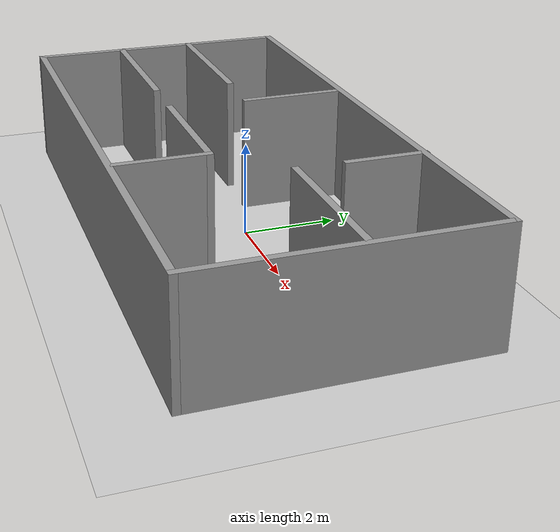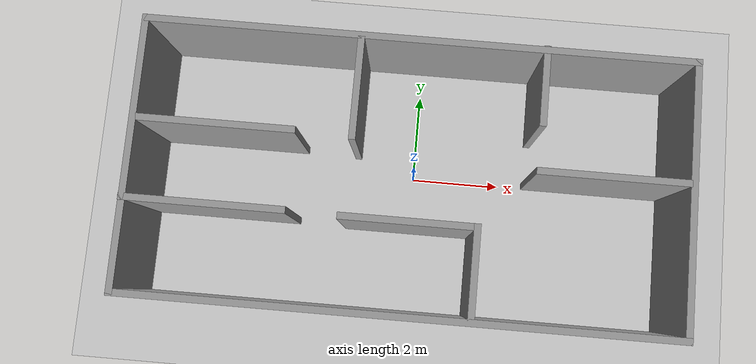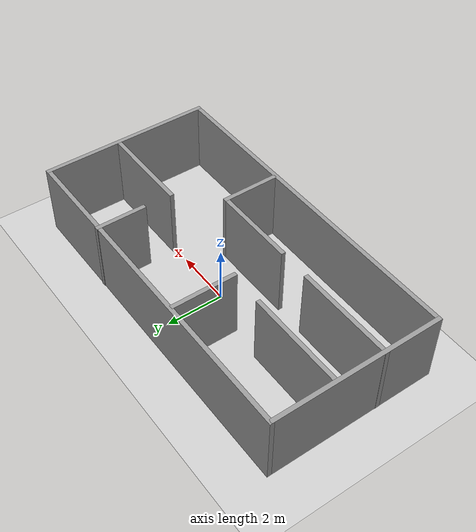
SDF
<sdf version="1.7">
 <world name="default">
  <light name="sun" type="directional">
   <pose>0 0 10 0 -0 0</pose>
   <diffuse>0.8 0.8 0.8 1</diffuse>
   <specular>0.2 0.2 0.2 1</specular>
   <attenuation>
    <range>1000</range>
    <constant>0.9</constant>
    <linear>0.01</linear>
    <quadratic>0.001</quadratic>
   </attenuation>
   <direction>-0.5 0.1 -0.9</direction>
   <spot><inner_angle>0</inner_angle><outer_angle>0</outer_angle><falloff>0</falloff></spot>
  </light>
  <model name="ground_plane">
   <static>1</static>
   <link name="link">
    <collision name="collision">
     <geometry><plane><normal>0 0 1</normal><size>100 100</size></plane></geometry>
     <surface><friction><ode><mu>100</mu><mu2>50</mu2></ode></friction></surface>
    </collision>
    <visual name="visual">
     <cast_shadows>0</cast_shadows>
     <geometry><plane><normal>0 0 1</normal><size>100 100</size></plane></geometry>
     <material>
      <script><uri>file://media/materials/scripts/gazebo.material</uri><name>Gazebo/Grey</name></script>
     </material>
    </visual>
   </link>
  </model>
  <gravity>0 0 -9.8</gravity>
  <magnetic_field>6e-06 2.3e-05 -4.2e-05</magnetic_field>
  <atmosphere type="adiabatic"/>
  <physics type="ode">
   <max_step_size>0.001</max_step_size>
   <real_time_factor>1</real_time_factor>
   <real_time_update_rate>1000</real_time_update_rate>
  </physics>
  <scene><ambient>0.4 0.4 0.4 1</ambient><background>0.7 0.7 0.7 1</background><shadows>1</shadows></scene>
  <audio><device>default</device></audio>
  <spherical_coordinates>
   <surface_model>EARTH_WGS84</surface_model>
   <latitude_deg>0</latitude_deg>
   <longitude_deg>0</longitude_deg>
   <elevation>0</elevation>
   <heading_deg>0</heading_deg>
  </spherical_coordinates>
  <model name="room">
   <pose>-0.071215 0.042074 0 0 -0 0</pose>
   <link name="Wall_0">
    <collision name="Wall_0_Collision">
     <geometry><box><size>6 0.15 2.5</size></box></geometry>
     <pose>0 0 1.25 0 -0 0</pose>
    </collision>
    <visual name="Wall_0_Visual">
     <pose>0 0 1.25 0 -0 0</pose>
     <geometry><box><size>6 0.15 2.5</size></box></geometry>
     <material>
      <script><uri>file://media/materials/scripts/gazebo.material</uri><name>Gazebo/Grey</name></script>
      <ambient>1 1 1 1</ambient>
     </material>
     <meta><layer>0</layer></meta>
    </visual>
    <pose>-5.92057 -0.288752 0 0 -0 -1.5708</pose>
   </link>
   <link name="Wall_11">
    <collision name="Wall_11_Collision">
     <geometry><box><size>2.25 0.15 2.5</size></box></geometry>
     <pose>0 0 1.25 0 -0 0</pose>
    </collision>
    <visual name="Wall_11_Visual">
     <pose>0 0 1.25 0 -0 0</pose>
     <geometry><box><size>2.25 0.15 2.5</size></box></geometry>
     <material>
      <script><uri>file://media/materials/scripts/gazebo.material</uri><name>Gazebo/Grey</name></script>
      <ambient>1 1 1 1</ambient>
     </material>
     <meta><layer>0</layer></meta>
    </visual>
    <pose>-1.27526 1.48542 0 0 -0 1.5708</pose>
   </link>
   <link name="Wall_14">
    <collision name="Wall_14_Collision">
     <geometry><box><size>3.5 0.15 2.5</size></box></geometry>
     <pose>0 0 1.25 0 -0 0</pose>
    </collision>
    <visual name="Wall_14_Visual">
     <pose>0 0 1.25 0 -0 0</pose>
     <geometry><box><size>3.5 0.15 2.5</size></box></geometry>
     <material>
      <script><uri>file://media/materials/scripts/gazebo.material</uri><name>Gazebo/Grey</name></script>
      <ambient>1 1 1 1</ambient>
     </material>
     <meta><layer>0</layer></meta>
    </visual>
    <pose>-4.22401 0.465843 0 0 -0 0</pose>
   </link>
   <link name="Wall_19">
    <collision name="Wall_19_Collision">
     <geometry><box><size>3.5 0.15 2.5</size></box></geometry>
     <pose>0 0 1.25 0 -0 0</pose>
    </collision>
    <visual name="Wall_19_Visual">
     <pose>0 0 1.25 0 -0 0</pose>
     <geometry><box><size>3.5 0.15 2.5</size></box></geometry>
     <material>
      <script><uri>file://media/materials/scripts/gazebo.material</uri><name>Gazebo/Grey</name></script>
      <ambient>1 1 1 1</ambient>
     </material>
     <meta><layer>0</layer></meta>
    </visual>
    <pose>-4.25443 -1.23754 0 0 -0 0</pose>
   </link>
   <link name="Wall_2">
    <collision name="Wall_2_Collision">
     <geometry><box><size>12 0.15 2.5</size></box></geometry>
     <pose>0 0 1.25 0 -0 0</pose>
    </collision>
    <visual name="Wall_2_Visual">
     <pose>0 0 1.25 0 -0 0</pose>
     <geometry><box><size>12 0.15 2.5</size></box></geometry>
     <material>
      <script><uri>file://media/materials/scripts/gazebo.material</uri><name>Gazebo/Grey</name></script>
      <ambient>1 1 1 1</ambient>
     </material>
     <meta><layer>0</layer></meta>
    </visual>
    <pose>0.004431 2.63625 0 0 -0 0</pose>
   </link>
   <link name="Wall_21">
    <collision name="Wall_21_Collision">
     <geometry><box><size>2 0.15 2.5</size></box></geometry>
     <pose>0 0 1.25 0 -0 0</pose>
    </collision>
    <visual name="Wall_21_Visual">
     <pose>0 0 1.25 0 -0 0</pose>
     <geometry><box><size>2 0.15 2.5</size></box></geometry>
     <material>
      <script><uri>file://media/materials/scripts/gazebo.material</uri><name>Gazebo/Grey</name></script>
      <ambient>1 1 1 1</ambient>
     </material>
     <meta><layer>0</layer></meta>
    </visual>
    <pose>1.49244 -2.18321 0 0 -0 1.5708</pose>
   </link>
   <link name="Wall_22">
    <collision name="Wall_22_Collision">
     <geometry><box><size>3 0.15 2.5</size></box></geometry>
     <pose>0 0 1.25 0 -0 0</pose>
    </collision>
    <visual name="Wall_22_Visual">
     <pose>0 0 1.25 0 -0 0</pose>
     <geometry><box><size>3 0.15 2.5</size></box></geometry>
     <material>
      <script><uri>file://media/materials/scripts/gazebo.material</uri><name>Gazebo/Grey</name></script>
      <ambient>1 1 1 1</ambient>
     </material>
     <meta><layer>0</layer></meta>
    </visual>
    <pose>0.067439 -1.25821 0 0 -0 3.14159</pose>
   </link>
   <link name="Wall_27">
    <collision name="Wall_27_Collision">
     <geometry><box><size>3.25 0.15 2.5</size></box></geometry>
     <pose>0 0 1.25 0 -0 0</pose>
    </collision>
    <visual name="Wall_27_Visual">
     <pose>0 0 1.25 0 -0 0</pose>
     <geometry><box><size>3.25 0.15 2.5</size></box></geometry>
     <material>
      <script><uri>file://media/materials/scripts/gazebo.material</uri><name>Gazebo/Grey</name></script>
      <ambient>1 1 1 1</ambient>
     </material>
     <meta><layer>0</layer></meta>
    </visual>
    <pose>4.25914 0.025485 0 0 -0 0</pose>
   </link>
   <link name="Wall_29">
    <collision name="Wall_29_Collision">
     <geometry><box><size>1.75 0.15 2.5</size></box></geometry>
     <pose>0 0 1.25 0 -0 0</pose>
    </collision>
    <visual name="Wall_29_Visual">
     <pose>0 0 1.25 0 -0 0</pose>
     <geometry><box><size>1.75 0.15 2.5</size></box></geometry>
     <material>
      <script><uri>file://media/materials/scripts/gazebo.material</uri><name>Gazebo/Grey</name></script>
      <ambient>1 1 1 1</ambient>
     </material>
     <meta><layer>0</layer></meta>
    </visual>
    <pose>2.70914 1.8559 0 0 -0 -1.5708</pose>
   </link>
   <link name="Wall_3">
    <collision name="Wall_3_Collision">
     <geometry><box><size>6 0.15 2.5</size></box></geometry>
     <pose>0 0 1.25 0 -0 0</pose>
    </collision>
    <visual name="Wall_3_Visual">
     <pose>0 0 1.25 0 -0 0</pose>
     <geometry><box><size>6 0.15 2.5</size></box></geometry>
     <material>
      <script><uri>file://media/materials/scripts/gazebo.material</uri><name>Gazebo/Grey</name></script>
      <ambient>1 1 1 1</ambient>
     </material>
     <meta><layer>0</layer></meta>
    </visual>
    <pose>5.92943 -0.288752 0 0 -0 -1.5708</pose>
   </link>
   <link name="Wall_4">
    <collision name="Wall_4_Collision">
     <geometry><box><size>12 0.15 2.5</size></box></geometry>
     <pose>0 0 1.25 0 -0 0</pose>
    </collision>
    <visual name="Wall_4_Visual">
     <pose>0 0 1.25 0 -0 0</pose>
     <geometry><box><size>12 0.15 2.5</size></box></geometry>
     <material>
      <script><uri>file://media/materials/scripts/gazebo.material</uri><name>Gazebo/Grey</name></script>
      <ambient>1 1 1 1</ambient>
     </material>
     <meta><layer>0</layer></meta>
    </visual>
    <pose>0.004431 -3.21375 0 0 -0 3.14159</pose>
   </link>
   <static>1</static>
  </model>
 </world>
</sdf>
